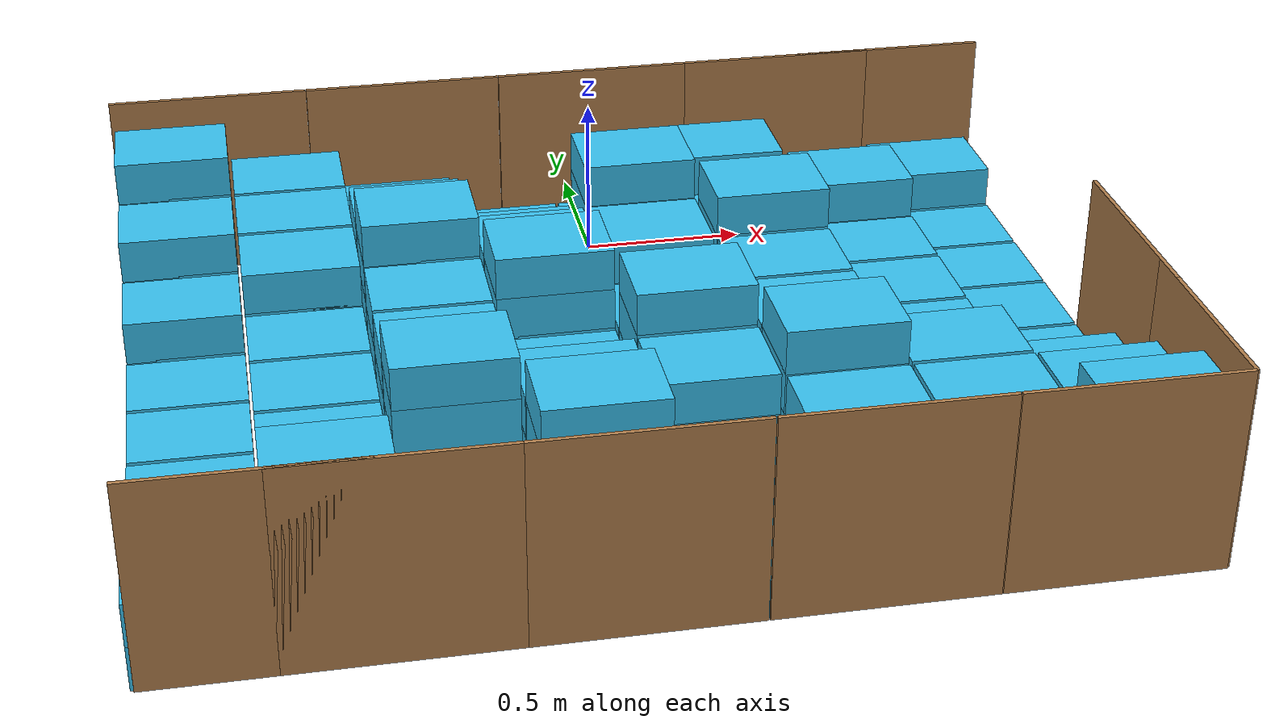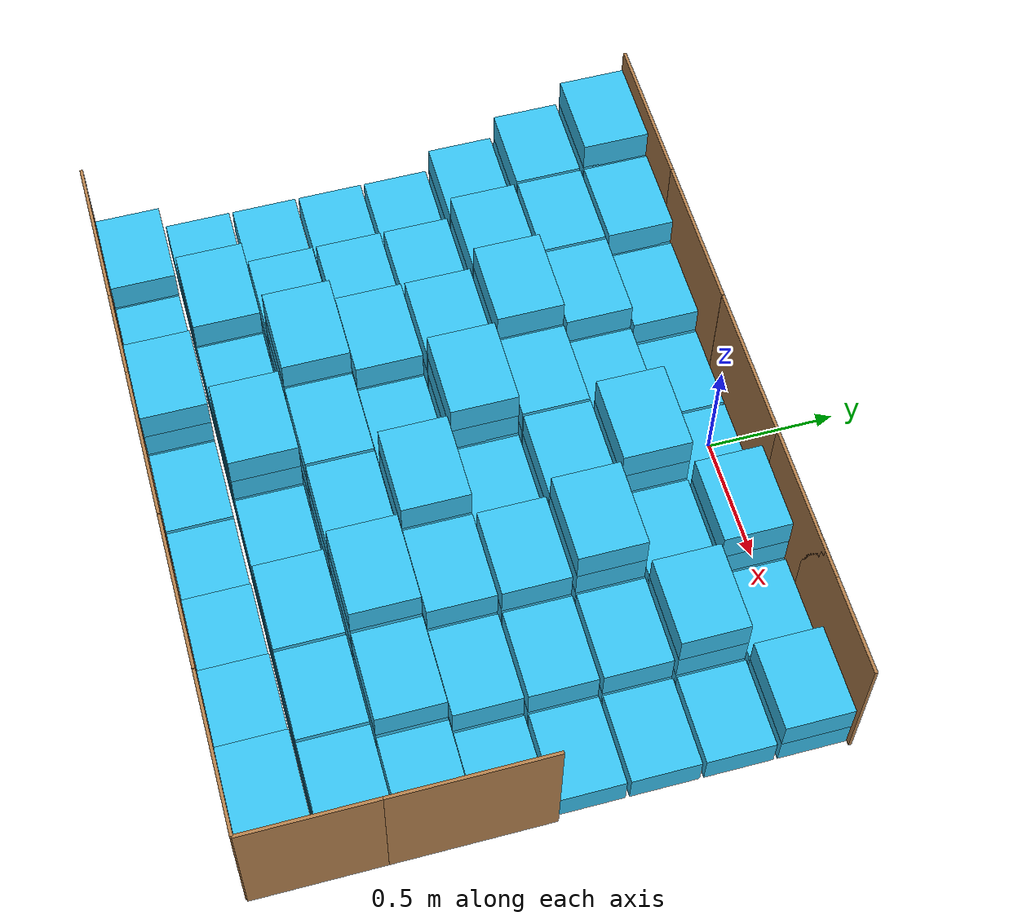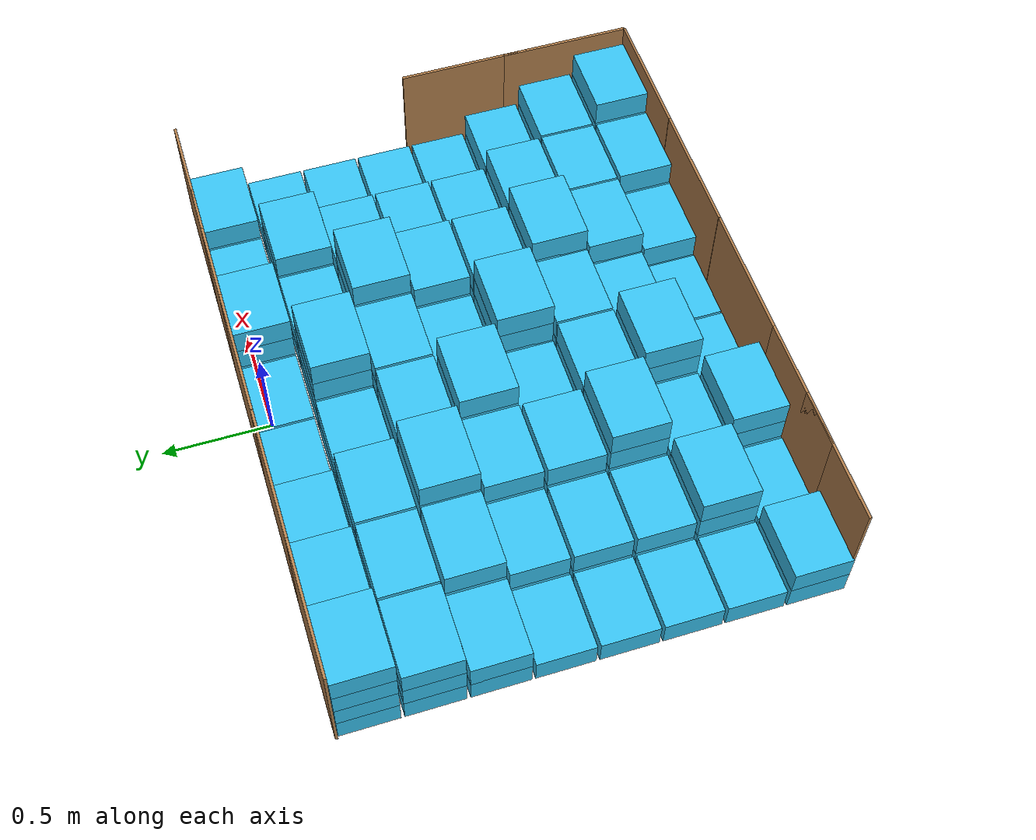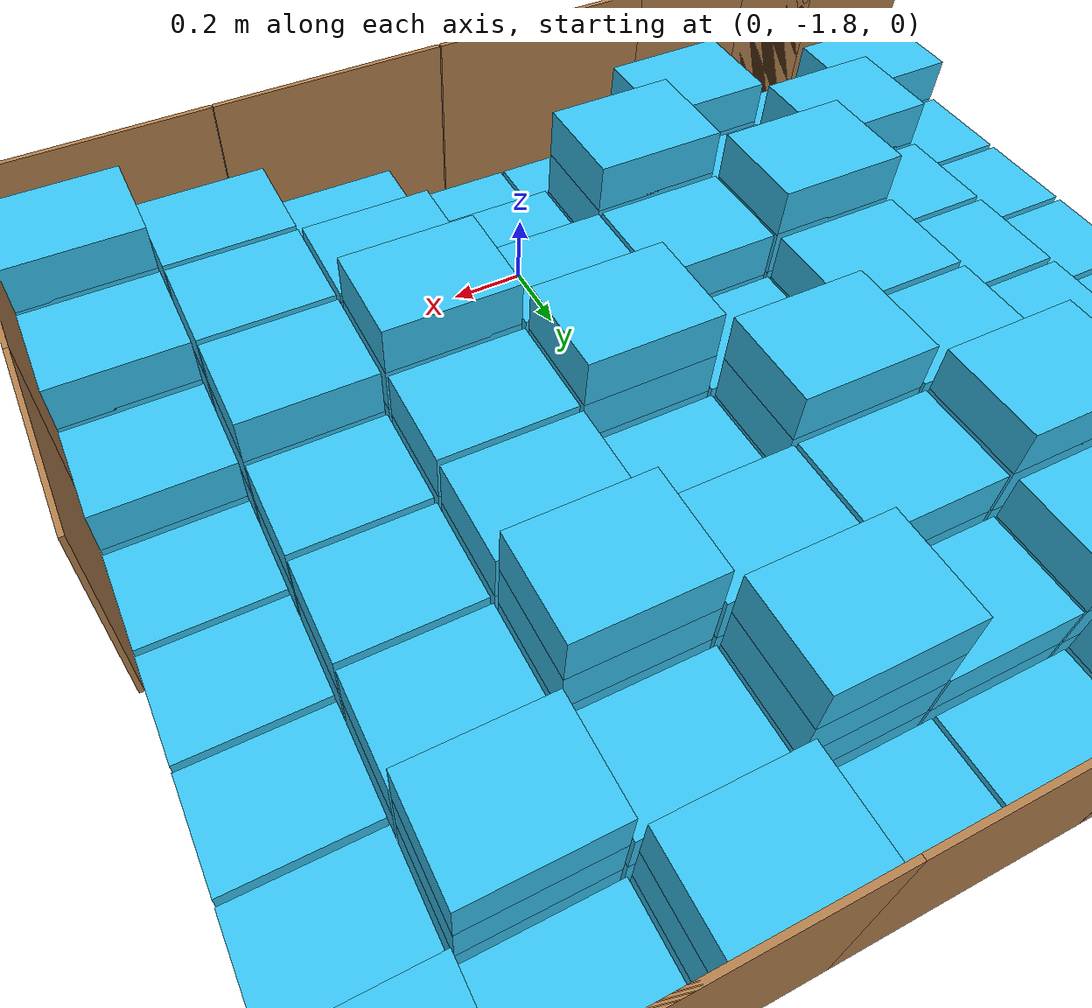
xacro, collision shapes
<?xml version="1.0" ?>
<robot xmlns:xacro="http://ros.org/wiki/xacro" name="competition_map_inner">
	<gazebo>
	<static>true</static>
	</gazebo>
	<link name="world"/>

	<xacro:include filename="$(find unitree_gazebo)/urdf/obstacles/materials.xacro" />

<!-- Terrain 5 -->
	<xacro:include filename="$(find unitree_gazebo)/urdf/obstacles/Plastic_Storage_Crate.urdf.xacro"/>

	<xacro:Plastic_Storage_Crate parent="world" handle="411" position="-0.2699953317642212 -0.32500243186950684 0.06500090658664703" orientation="3.141592653589793 2.568959825880172e-05 3.141592653589793"/>
	<xacro:Plastic_Storage_Crate parent="world" handle="421" position="0.7800014019012451 -1.9750040769577026 0.065028116106987" orientation="3.141592653589793 2.568959825880172e-05 3.141592653589793"/>
	<xacro:Plastic_Storage_Crate parent="world" handle="422" position="0.7800008058547974 -1.7000020742416382 0.06502814590930939" orientation="0.0 -2.5868415831076987e-05 0.0"/>
	<xacro:Plastic_Storage_Crate parent="world" handle="423" position="0.7800014019012451 -1.4250019788742065 0.06502790004014969" orientation="0.0 -2.5868415831076987e-05 0.0"/>
	<xacro:Plastic_Storage_Crate parent="world" handle="424" position="0.7800018787384033 -1.1500020027160645 0.06502807885408401" orientation="0.0 -2.5868415831076987e-05 0.0"/>
	<xacro:Plastic_Storage_Crate parent="world" handle="425" position="0.7800004482269287 -0.8750021457672119 0.06502798199653625" orientation="0.0 -2.5868415831076987e-05 0.0"/>
	<xacro:Plastic_Storage_Crate parent="world" handle="426" position="0.7800014019012451 -0.6000016927719116 0.06502790004014969" orientation="0.0 -2.5868415831076987e-05 0.0"/>
	<xacro:Plastic_Storage_Crate parent="world" handle="427" position="0.7800028324127197 -0.32500243186950684 0.06502801924943924" orientation="3.141592653589793 2.568959825880172e-05 3.141592653589793"/>
	<xacro:Plastic_Storage_Crate parent="world" handle="428" position="0.7800012826919556 -0.0500025749206543 0.0650281310081482" orientation="3.141592653589793 2.568959825880172e-05 3.141592653589793"/>
	<xacro:Plastic_Storage_Crate parent="world" handle="429" position="0.42999911308288574 -1.7000024318695068 0.06501908600330353" orientation="0.0 -2.5868415831076987e-05 0.0"/>
	<xacro:Plastic_Storage_Crate parent="world" handle="430" position="0.430000901222229 -1.4250019788742065 0.06501901894807816" orientation="0.0 -2.5868415831076987e-05 0.0"/>
	<xacro:Plastic_Storage_Crate parent="world" handle="431" position="0.42999911308288574 -1.150002121925354 0.06501908600330353" orientation="0.0 -2.5868415831076987e-05 0.0"/>
	<xacro:Plastic_Storage_Crate parent="world" handle="432" position="0.4299999475479126 -0.8750021457672119 0.06501903384923935" orientation="0.0 -2.5868415831076987e-05 0.0"/>
	<xacro:Plastic_Storage_Crate parent="world" handle="433" position="0.4299999475479126 -0.6000016927719116 0.06501903384923935" orientation="0.0 -2.5868415831076987e-05 0.0"/>
	<xacro:Plastic_Storage_Crate parent="world" handle="434" position="0.43000006675720215 -0.32500243186950684 0.06501896679401398" orientation="3.141592653589793 2.568959825880172e-05 3.141592653589793"/>
	<xacro:Plastic_Storage_Crate parent="world" handle="435" position="0.43000006675720215 -0.0500025749206543 0.06501896679401398" orientation="3.141592653589793 2.568959825880172e-05 3.141592653589793"/>
	<xacro:Plastic_Storage_Crate parent="world" handle="436" position="0.08000147342681885 -1.9750031232833862 0.06501009315252304" orientation="3.141592653589793 2.568959825880172e-05 3.141592653589793"/>
	<xacro:Plastic_Storage_Crate parent="world" handle="437" position="0.08000040054321289 -1.7000020742416382 0.0650099366903305" orientation="0.0 -2.5868415831076987e-05 0.0"/>
	<xacro:Plastic_Storage_Crate parent="world" handle="438" position="0.07999932765960693 -1.4250019788742065 0.06500985473394394" orientation="0.0 -2.5868415831076987e-05 0.0"/>
	<xacro:Plastic_Storage_Crate parent="world" handle="439" position="0.08000040054321289 -1.150001883506775 0.0650099366903305" orientation="0.0 -2.5868415831076987e-05 0.0"/>
	<xacro:Plastic_Storage_Crate parent="world" handle="440" position="0.08000040054321289 -0.8750021457672119 0.0650099366903305" orientation="0.0 -2.5868415831076987e-05 0.0"/>
	<xacro:Plastic_Storage_Crate parent="world" handle="441" position="0.07999932765960693 -0.6000016927719116 0.06500985473394394" orientation="0.0 -2.5868415831076987e-05 0.0"/>
	<xacro:Plastic_Storage_Crate parent="world" handle="442" position="0.08000147342681885 -0.32500243186950684 0.06501009315252304" orientation="3.141592653589793 2.568959825880172e-05 3.141592653589793"/>
	<xacro:Plastic_Storage_Crate parent="world" handle="443" position="0.08000040054321289 -0.0500025749206543 0.0650099366903305" orientation="3.141592653589793 2.568959825880172e-05 3.141592653589793"/>
	<xacro:Plastic_Storage_Crate parent="world" handle="444" position="-0.2699980139732361 -1.7000020742416382 0.06500095874071121" orientation="0.0 -2.5868415831076987e-05 0.0"/>
	<xacro:Plastic_Storage_Crate parent="world" handle="445" position="-0.2699993848800659 -1.4250019788742065 0.06500086933374405" orientation="0.0 -2.5868415831076987e-05 0.0"/>
	<xacro:Plastic_Storage_Crate parent="world" handle="446" position="-0.2699980139732361 -1.150002121925354 0.06500095874071121" orientation="0.0 -2.5868415831076987e-05 0.0"/>
	<xacro:Plastic_Storage_Crate parent="world" handle="447" position="-0.2699981927871704 -0.8750016689300537 0.065000981092453" orientation="3.141592653589793 2.568959825880172e-05 3.141592653589793"/>
	<xacro:Plastic_Storage_Crate parent="world" handle="448" position="-0.2699981927871704 -0.6000015735626221 0.065000981092453" orientation="3.141592653589793 2.568959825880172e-05 3.141592653589793"/>
	<xacro:Plastic_Storage_Crate parent="world" handle="449" position="-0.6199989914894104 -0.8750021457672119 0.06499185413122177" orientation="0.0 -2.5868415831076987e-05 0.0"/>
	<xacro:Plastic_Storage_Crate parent="world" handle="450" position="-0.6199984550476074 -0.32500243186950684 0.06499200314283371" orientation="3.141592653589793 2.568959825880172e-05 3.141592653589793"/>
	<xacro:Plastic_Storage_Crate parent="world" handle="451" position="-0.6200002431869507 -0.0500025749206543 0.06499200314283371" orientation="3.141592653589793 2.568959825880172e-05 3.141592653589793"/>
	<xacro:Plastic_Storage_Crate parent="world" handle="452" position="-0.6199996471405029 -0.6000016927719116 0.06499158591032028" orientation="0.0 -2.5868415831076987e-05 0.0"/>
	<xacro:Plastic_Storage_Crate parent="world" handle="453" position="-0.9699981212615967 -1.7000023126602173 0.0649828314781189" orientation="3.141592653589793 2.568959825880172e-05 3.141592653589793"/>
	<xacro:Plastic_Storage_Crate parent="world" handle="454" position="-0.9699994325637817 -1.4250019788742065 0.06498309969902039" orientation="0.0 -2.5868415831076987e-05 0.0"/>
	<xacro:Plastic_Storage_Crate parent="world" handle="455" position="-0.9699994325637817 -1.1500020027160645 0.06498309969902039" orientation="0.0 -2.5868415831076987e-05 0.0"/>
	<xacro:Plastic_Storage_Crate parent="world" handle="456" position="1.1299996376037598 -1.9750031232833862 0.19003722071647644" orientation="3.141592653589793 2.568959825880172e-05 3.141592653589793"/>
	<xacro:Plastic_Storage_Crate parent="world" handle="457" position="0.7799979448318481 -1.9750040769577026 0.1900283247232437" orientation="3.141592653589793 2.568959825880172e-05 3.141592653589793"/>
	<xacro:Plastic_Storage_Crate parent="world" handle="458" position="1.1300008296966553 -1.7000025510787964 0.19003668427467346" orientation="3.141592653589793 2.568959825880172e-05 3.141592653589793"/>
	<xacro:Plastic_Storage_Crate parent="world" handle="459" position="1.1300008296966553 -1.4250017404556274 0.1900370568037033" orientation="3.141592653589793 2.568959825880172e-05 3.141592653589793"/>
	<xacro:Plastic_Storage_Crate parent="world" handle="460" position="1.1299974918365479 -1.7000025510787964 0.31503668427467346" orientation="3.141592653589793 2.568959825880172e-05 3.141592653589793"/>
	<xacro:Plastic_Storage_Crate parent="world" handle="461" position="1.129995346069336 -1.9750031232833862 0.3150373697280884" orientation="3.141592653589793 2.568959825880172e-05 3.141592653589793"/>
	<xacro:Plastic_Storage_Crate parent="world" handle="462" position="0.7799948453903198 -1.9750040769577026 0.31502825021743774" orientation="3.141592653589793 2.568959825880172e-05 3.141592653589793"/>
	<xacro:Plastic_Storage_Crate parent="world" handle="463" position="-0.6200038194656372 -0.0500025749206543 0.18999190628528595" orientation="3.141592653589793 2.568959825880172e-05 3.141592653589793"/>
	<xacro:Plastic_Storage_Crate parent="world" handle="464" position="1.129992961883545 -1.9750031232833862 0.44003742933273315" orientation="3.141592653589793 2.568959825880172e-05 3.141592653589793"/>
	<xacro:Plastic_Storage_Crate parent="world" handle="465" position="1.1300036907196045 -1.7000024318695068 0.06503673642873764" orientation="3.141592653589793 2.5868415831076993e-05 3.141592653589793"/>
	<xacro:Plastic_Storage_Crate parent="world" handle="466" position="1.1300034523010254 -1.150001883506775 0.06503678113222122" orientation="3.141592653589793 2.568959825880172e-05 3.141592653589793"/>
	<xacro:Plastic_Storage_Crate parent="world" handle="467" position="1.1300034523010254 -0.6000015735626221 0.06503678113222122" orientation="3.141592653589793 2.568959825880172e-05 3.141592653589793"/>
	<xacro:Plastic_Storage_Crate parent="world" handle="468" position="-0.9699994325637817 -0.8750021457672119 0.06498309969902039" orientation="0.0 -2.5868415831076987e-05 0.0"/>
	<xacro:Plastic_Storage_Crate parent="world" handle="469" position="-0.9699994325637817 -0.6000016927719116 0.06498309969902039" orientation="0.0 -2.5868415831076987e-05 0.0"/>
	<xacro:Plastic_Storage_Crate parent="world" handle="470" position="-0.9699994325637817 -0.32500243186950684 0.06498309969902039" orientation="0.0 -2.5868415831076987e-05 0.0"/>
	<xacro:Plastic_Storage_Crate parent="world" handle="471" position="-0.9699981212615967 -0.0500025749206543 0.0649828314781189" orientation="3.141592653589793 2.568959825880172e-05 3.141592653589793"/>
	<xacro:Plastic_Storage_Crate parent="world" handle="472" position="-1.3199998140335083 -1.4250017404556274 0.06497394293546677" orientation="3.141592653589793 2.568959825880172e-05 3.141592653589793"/>
	<xacro:Plastic_Storage_Crate parent="world" handle="473" position="-1.3199998140335083 -0.8750016689300537 0.06497394293546677" orientation="3.141592653589793 2.568959825880172e-05 3.141592653589793"/>
	<xacro:Plastic_Storage_Crate parent="world" handle="474" position="-1.3199998140335083 -0.32500243186950684 0.06497394293546677" orientation="3.141592653589793 2.568959825880172e-05 3.141592653589793"/>
	<xacro:Plastic_Storage_Crate parent="world" handle="475" position="0.7799997329711914 -1.7000023126602173 0.19002807140350342" orientation="3.141592653589793 2.568959825880172e-05 3.141592653589793"/>
	<xacro:Plastic_Storage_Crate parent="world" handle="476" position="0.7800003290176392 -1.4250017404556274 0.19002804160118103" orientation="3.141592653589793 2.568959825880172e-05 3.141592653589793"/>
	<xacro:Plastic_Storage_Crate parent="world" handle="477" position="0.7800006866455078 -1.150001883506775 0.19002801179885864" orientation="3.141592653589793 2.568959825880172e-05 3.141592653589793"/>
	<xacro:Plastic_Storage_Crate parent="world" handle="478" position="0.7799993753433228 -0.8750016689300537 0.19002804160118103" orientation="3.141592653589793 2.568959825880172e-05 3.141592653589793"/>
	<xacro:Plastic_Storage_Crate parent="world" handle="479" position="0.7800003290176392 -0.6000015735626221 0.19002804160118103" orientation="3.141592653589793 2.568959825880172e-05 3.141592653589793"/>
	<xacro:Plastic_Storage_Crate parent="world" handle="480" position="0.42999887466430664 -1.7000025510787964 0.19001901149749756" orientation="3.141592653589793 2.568959825880172e-05 3.141592653589793"/>
	<xacro:Plastic_Storage_Crate parent="world" handle="481" position="0.4299999475479126 -1.4250019788742065 0.19001902639865875" orientation="0.0 -2.5868415831076987e-05 0.0"/>
	<xacro:Plastic_Storage_Crate parent="world" handle="482" position="0.4299980401992798 -1.150002121925354 0.19001907110214233" orientation="0.0 -2.5868415831076987e-05 0.0"/>
	<xacro:Plastic_Storage_Crate parent="world" handle="483" position="0.42999887466430664 -0.8750021457672119 0.19001902639865875" orientation="0.0 -2.5868415831076987e-05 0.0"/>
	<xacro:Plastic_Storage_Crate parent="world" handle="484" position="0.4299999475479126 -0.6000015735626221 0.19001896679401398" orientation="3.141592653589793 2.568959825880172e-05 3.141592653589793"/>
	<xacro:Plastic_Storage_Crate parent="world" handle="485" position="0.42999887466430664 -0.32500243186950684 0.19001901149749756" orientation="3.141592653589793 2.568959825880172e-05 3.141592653589793"/>
	<xacro:Plastic_Storage_Crate parent="world" handle="486" position="0.07999956607818604 -1.7000023126602173 0.19001001119613647" orientation="3.141592653589793 2.568959825880172e-05 3.141592653589793"/>
	<xacro:Plastic_Storage_Crate parent="world" handle="487" position="0.07999742031097412 -1.4250019788742065 0.1900099217891693" orientation="0.0 -2.5868415831076987e-05 0.0"/>
	<xacro:Plastic_Storage_Crate parent="world" handle="488" position="0.07999837398529053 -1.150001883506775 0.19001002609729767" orientation="0.0 -2.5868415831076987e-05 0.0"/>
	<xacro:Plastic_Storage_Crate parent="world" handle="489" position="0.07999837398529053 -0.8750021457672119 0.19001002609729767" orientation="3.141592653589793 -8.742277657347583e-08 3.141592653589793"/>
	<xacro:Plastic_Storage_Crate parent="world" handle="490" position="0.07999742031097412 -0.6000016927719116 0.1900099217891693" orientation="0.0 -2.5868415831076987e-05 0.0"/>
	<xacro:Plastic_Storage_Crate parent="world" handle="491" position="0.07999956607818604 -0.32500243186950684 0.19001001119613647" orientation="3.141592653589793 2.568959825880172e-05 3.141592653589793"/>
	<xacro:Plastic_Storage_Crate parent="world" handle="492" position="-0.6199964284896851 -1.9750031232833862 0.06499192118644714" orientation="3.141592653589793 2.568959825880172e-05 3.141592653589793"/>
	<xacro:Plastic_Storage_Crate parent="world" handle="493" position="-0.6199973821640015 -1.7000024318695068 0.06499174982309341" orientation="0.0 -2.5868415831076987e-05 0.0"/>
	<xacro:Plastic_Storage_Crate parent="world" handle="494" position="-0.6199989914894104 -1.4250019788742065 0.06499185413122177" orientation="0.0 -2.5868415831076987e-05 0.0"/>
	<xacro:Plastic_Storage_Crate parent="world" handle="495" position="-0.6199973821640015 -1.150002121925354 0.06499174982309341" orientation="0.0 -2.5868415831076987e-05 0.0"/>
	<xacro:Plastic_Storage_Crate parent="world" handle="496" position="-0.9700043201446533 -0.6000015735626221 0.3149827718734741" orientation="3.141592653589793 2.568959825880172e-05 3.141592653589793"/>
	<xacro:Plastic_Storage_Crate parent="world" handle="497" position="-1.320009469985962 -0.05000114440917969 0.4399738907814026" orientation="3.141592653589793 2.568959825880172e-05 3.141592653589793"/>
	<xacro:Plastic_Storage_Crate parent="world" handle="498" position="-0.2700003385543823 -1.7000023126602173 0.19000113010406494" orientation="3.141592653589793 2.568959825880172e-05 3.141592653589793"/>
	<xacro:Plastic_Storage_Crate parent="world" handle="499" position="-0.27000290155410767 -1.4250019788742065 0.19000092148780823" orientation="0.0 -2.5868415831076987e-05 0.0"/>
	<xacro:Plastic_Storage_Crate parent="world" handle="500" position="-0.2700014114379883 -1.150002121925354 0.19000087678432465" orientation="3.141592653589793 -8.742277657347583e-08 3.141592653589793"/>
	<xacro:Plastic_Storage_Crate parent="world" handle="501" position="-0.27000290155410767 -0.8750021457672119 0.19000092148780823" orientation="0.0 -2.5868415831076987e-05 0.0"/>
	<xacro:Plastic_Storage_Crate parent="world" handle="502" position="-0.27000153064727783 -0.6000015735626221 0.19000107049942017" orientation="3.141592653589793 2.568959825880172e-05 3.141592653589793"/>
	<xacro:Plastic_Storage_Crate parent="world" handle="503" position="-0.26999831199645996 -0.32500243186950684 0.1900010108947754" orientation="3.141592653589793 2.568959825880172e-05 3.141592653589793"/>
	<xacro:Plastic_Storage_Crate parent="world" handle="504" position="-0.6199997663497925 -1.7000025510787964 0.18999198079109192" orientation="3.141592653589793 2.568959825880172e-05 3.141592653589793"/>
	<xacro:Plastic_Storage_Crate parent="world" handle="505" position="-0.6200007200241089 -1.4250017404556274 0.1899920403957367" orientation="3.141592653589793 2.568959825880172e-05 3.141592653589793"/>
	<xacro:Plastic_Storage_Crate parent="world" handle="506" position="-0.6200006008148193 -1.150002121925354 0.1899920403957367" orientation="0.0 -2.5868415831076987e-05 0.0"/>
	<xacro:Plastic_Storage_Crate parent="world" handle="507" position="-0.620002269744873 -0.8750021457672119 0.18999169766902924" orientation="0.0 -2.5868415831076987e-05 0.0"/>
	<xacro:Plastic_Storage_Crate parent="world" handle="508" position="-0.6200017929077148 -0.32500243186950684 0.18999208509922028" orientation="3.141592653589793 2.568959825880172e-05 3.141592653589793"/>
	<xacro:Plastic_Storage_Crate parent="world" handle="509" position="-0.6200031042098999 -0.6000016927719116 0.18999195098876953" orientation="0.0 -2.5868415831076987e-05 0.0"/>
	<xacro:Plastic_Storage_Crate parent="world" handle="510" position="-0.9700014591217041 -1.4250017404556274 0.1899828165769577" orientation="3.141592653589793 2.568959825880172e-05 3.141592653589793"/>
	<xacro:Plastic_Storage_Crate parent="world" handle="511" position="-0.9700014591217041 -1.150001883506775 0.1899828165769577" orientation="3.141592653589793 2.568959825880172e-05 3.141592653589793"/>
	<xacro:Plastic_Storage_Crate parent="world" handle="512" position="-0.9700014591217041 -0.8750016689300537 0.1899828165769577" orientation="3.141592653589793 2.568959825880172e-05 3.141592653589793"/>
	<xacro:Plastic_Storage_Crate parent="world" handle="513" position="-0.9700014591217041 -0.6000015735626221 0.1899828165769577" orientation="3.141592653589793 2.568959825880172e-05 3.141592653589793"/>
	<xacro:Plastic_Storage_Crate parent="world" handle="514" position="-0.9700014591217041 -0.32500243186950684 0.1899828165769577" orientation="3.141592653589793 2.568959825880172e-05 3.141592653589793"/>
	<xacro:Plastic_Storage_Crate parent="world" handle="515" position="0.4299978017807007 -1.4250017404556274 0.3150192201137543" orientation="3.141592653589793 2.568959825880172e-05 3.141592653589793"/>
	<xacro:Plastic_Storage_Crate parent="world" handle="516" position="0.42999565601348877 -1.150001883506775 0.3150192201137543" orientation="3.141592653589793 2.568959825880172e-05 3.141592653589793"/>
	<xacro:Plastic_Storage_Crate parent="world" handle="517" position="0.4299968481063843 -0.8750016689300537 0.31501924991607666" orientation="3.141592653589793 2.568959825880172e-05 3.141592653589793"/>
	<xacro:Plastic_Storage_Crate parent="world" handle="518" position="0.07999527454376221 -1.4250017404556274 0.3150100111961365" orientation="3.141592653589793 2.568959825880172e-05 3.141592653589793"/>
	<xacro:Plastic_Storage_Crate parent="world" handle="519" position="0.07999515533447266 -1.150001883506775 0.3150100111961365" orientation="0.0 -2.5868415831076987e-05 0.0"/>
	<xacro:Plastic_Storage_Crate parent="world" handle="520" position="-0.2700080871582031 -0.8750016689300537 0.4400011897087097" orientation="3.141592653589793 2.568959825880172e-05 3.141592653589793"/>
	<xacro:Plastic_Storage_Crate parent="world" handle="521" position="0.4300016164779663 -1.9750040769577026 0.0650191605091095" orientation="3.141592653589793 2.568959825880172e-05 3.141592653589793"/>
	<xacro:Plastic_Storage_Crate parent="world" handle="522" position="-0.26999926567077637 -1.9750031232833862 0.06500095129013062" orientation="3.141592653589793 2.568959825880172e-05 3.141592653589793"/>
	<xacro:Plastic_Storage_Crate parent="world" handle="523" position="-0.9699981212615967 -1.9750031232833862 0.0649828314781189" orientation="3.141592653589793 2.568959825880172e-05 3.141592653589793"/>
	<xacro:Plastic_Storage_Crate parent="world" handle="524" position="-1.3199998140335083 -1.1500011682510376 0.06497394293546677" orientation="3.141592653589793 2.568959825880172e-05 3.141592653589793"/>
	<xacro:Plastic_Storage_Crate parent="world" handle="525" position="-1.3199998140335083 -0.6000006198883057 0.06497394293546677" orientation="3.141592653589793 2.568959825880172e-05 3.141592653589793"/>
	<xacro:Plastic_Storage_Crate parent="world" handle="526" position="-1.3199998140335083 -0.05000114440917969 0.06497394293546677" orientation="3.141592653589793 2.568959825880172e-05 3.141592653589793"/>
	<xacro:Plastic_Storage_Crate parent="world" handle="527" position="1.1300034523010254 -0.32500243186950684 0.06503660976886749" orientation="3.141592653589793 2.568959825880172e-05 3.141592653589793"/>
	<xacro:Plastic_Storage_Crate parent="world" handle="528" position="1.1300034523010254 -0.875002384185791 0.06503660976886749" orientation="3.141592653589793 2.568959825880172e-05 3.141592653589793"/>
	<xacro:Plastic_Storage_Crate parent="world" handle="529" position="0.7799965143203735 -1.7000023126602173 0.31502825021743774" orientation="3.141592653589793 2.568959825880172e-05 3.141592653589793"/>
	<xacro:Plastic_Storage_Crate parent="world" handle="530" position="0.4299945831298828 -1.4250017404556274 0.44001924991607666" orientation="3.141592653589793 2.568959825880172e-05 3.141592653589793"/>
	<xacro:Plastic_Storage_Crate parent="world" handle="531" position="-0.620008111000061 -0.6000015735626221 0.43999215960502625" orientation="3.141592653589793 2.568959825880172e-05 3.141592653589793"/>
	<xacro:Plastic_Storage_Crate parent="world" handle="532" position="-0.9700043201446533 -0.32500243186950684 0.3149827718734741" orientation="3.141592653589793 2.568959825880172e-05 3.141592653589793"/>
	<xacro:Plastic_Storage_Crate parent="world" handle="533" position="-1.3200030326843262 -0.05000114440917969 0.18997392058372498" orientation="3.141592653589793 2.568959825880172e-05 3.141592653589793"/>
	<xacro:Plastic_Storage_Crate parent="world" handle="534" position="-1.3200030326843262 -0.32500243186950684 0.18997392058372498" orientation="3.141592653589793 2.568959825880172e-05 3.141592653589793"/>
	<xacro:Plastic_Storage_Crate parent="world" handle="535" position="-0.9700014591217041 -0.0500025749206543 0.1899828165769577" orientation="3.141592653589793 2.568959825880172e-05 3.141592653589793"/>
	<xacro:Plastic_Storage_Crate parent="world" handle="536" position="0.7799968719482422 -1.4250017404556274 0.31502822041511536" orientation="3.141592653589793 2.568959825880172e-05 3.141592653589793"/>
	<xacro:Plastic_Storage_Crate parent="world" handle="537" position="0.42999565601348877 -1.7000025510787964 0.3150192201137543" orientation="3.141592653589793 2.568959825880172e-05 3.141592653589793"/>
	<xacro:Plastic_Storage_Crate parent="world" handle="538" position="0.42999792098999023 -1.9750040769577026 0.19001907110214233" orientation="3.141592653589793 2.568959825880172e-05 3.141592653589793"/>
	<xacro:Plastic_Storage_Crate parent="world" handle="539" position="-0.6200047731399536 -0.32500243186950684 0.3149920403957367" orientation="3.141592653589793 2.568959825880172e-05 3.141592653589793"/>
	<xacro:Plastic_Storage_Crate parent="world" handle="540" position="-0.9700043201446533 -0.0500025749206543 0.3149827718734741" orientation="3.141592653589793 2.568959825880172e-05 3.141592653589793"/>
	<xacro:Plastic_Storage_Crate parent="world" handle="541" position="-1.320006251335144 -0.05000114440917969 0.31497395038604736" orientation="3.141592653589793 2.568959825880172e-05 3.141592653589793"/>
	<xacro:Plastic_Storage_Crate parent="world" handle="542" position="-1.320006251335144 -0.32500243186950684 0.31497395038604736" orientation="3.141592653589793 2.568959825880172e-05 3.141592653589793"/>
	<xacro:Plastic_Storage_Crate parent="world" handle="543" position="-1.3200029134750366 -0.6000006198883057 0.18997405469417572" orientation="3.141592653589793 2.568959825880172e-05 3.141592653589793"/>
	<xacro:Plastic_Storage_Crate parent="world" handle="544" position="1.1300017833709717 -1.9750019311904907 0.06503701210021973" orientation="3.141592653589793 2.568959825880172e-05 3.141592653589793"/>
	<xacro:Plastic_Storage_Crate parent="world" handle="545" position="1.1300041675567627 -1.4250017404556274 0.06503694504499435" orientation="3.141592653589793 2.568959825880172e-05 3.141592653589793"/>
	<xacro:Plastic_Storage_Crate parent="world" handle="546" position="0.07999527454376221 -0.6000015735626221 0.3150100111961365" orientation="3.141592653589793 2.568959825880172e-05 3.141592653589793"/>
	<xacro:Plastic_Storage_Crate parent="world" handle="547" position="-0.27000486850738525 -1.4250017404556274 0.31500113010406494" orientation="3.141592653589793 2.568959825880172e-05 3.141592653589793"/>
	<xacro:Plastic_Storage_Crate parent="world" handle="548" position="-0.27000588178634644 -0.8750021457672119 0.31500115990638733" orientation="0.0 -2.5868415831076987e-05 0.0"/>
	<xacro:Plastic_Storage_Crate parent="world" handle="549" position="-0.27000486850738525 -0.6000015735626221 0.31500113010406494" orientation="3.141592653589793 2.568959825880172e-05 3.141592653589793"/>
	<xacro:Plastic_Storage_Crate parent="world" handle="550" position="-0.6200028657913208 -1.150001883506775 0.31499189138412476" orientation="3.141592653589793 2.568959825880172e-05 3.141592653589793"/>
	<xacro:Plastic_Storage_Crate parent="world" handle="551" position="-0.6200039386749268 -0.8750016689300537 0.31499210000038147" orientation="3.141592653589793 2.568959825880172e-05 3.141592653589793"/>
	<xacro:Plastic_Storage_Crate parent="world" handle="552" position="-0.6200047731399536 -0.6000015735626221 0.3149920403957367" orientation="3.141592653589793 2.568959825880172e-05 3.141592653589793"/>
	<xacro:Plastic_Storage_Crate parent="world" handle="553" position="0.07999289035797119 -1.1500016450881958 0.440010130405426" orientation="3.141592653589793 2.568959825880172e-05 3.141592653589793"/>
	<xacro:Plastic_Storage_Crate parent="world" handle="554" position="-0.2700004577636719 -1.700002908706665 0.44000110030174255" orientation="3.1415926535894076 2.586841583107698e-05 3.1415926237874725"/>
	<xacro:Plastic_Storage_Crate parent="world" handle="555" position="-1.3199974298477173 -1.975003957748413 0.18998295068740845" orientation="3.1415926237874707 2.5689598258801718e-05 3.1415926535894103"/>
	<xacro:Plastic_Storage_Crate parent="world" handle="556" position="1.1300039291381836 -0.0500030517578125 0.06503670662641525" orientation="3.1415926237874707 2.5689598258801718e-05 3.1415926535894103"/>
	<xacro:Plastic_Storage_Crate parent="world" handle="557" position="-1.3199974298477173 -1.975003957748413 0.06498291343450546" orientation="3.1415926237874707 2.5689598258801718e-05 3.1415926535894103"/>
	<xacro:Plastic_Storage_Crate parent="world" handle="558" position="-0.6199958324432373 -1.9750034809112549 0.31499183177948" orientation="3.1415926237874707 2.5689598258801718e-05 3.1415926535894103"/>
	<xacro:Plastic_Storage_Crate parent="world" handle="559" position="-0.9699980020523071 -1.7000030279159546 0.3149827718734741" orientation="3.1415926237874707 2.5689598258801718e-05 3.1415926535894103"/>
	<xacro:Plastic_Storage_Crate parent="world" handle="560" position="-1.31999933719635 -1.7000017166137695 0.06497389823198318" orientation="3.1415926237874707 2.5689598258801718e-05 3.1415926535894103"/>
	<xacro:Plastic_Storage_Crate parent="world" handle="561" position="-0.6199959516525269 -1.9750033617019653 0.1899917870759964" orientation="3.1415926237874707 2.5689598258801718e-05 3.1415926535894103"/>
	<xacro:Plastic_Storage_Crate parent="world" handle="562" position="-0.9699978828430176 -1.700002908706665 0.18998274207115173" orientation="3.1415926237874707 2.5689598258801718e-05 3.1415926535894103"/>
	<xacro:Plastic_Storage_Crate parent="world" handle="563" position="0.430000901222229 -0.0500030517578125 0.31501907110214233" orientation="3.1415926237874707 2.5689598258801718e-05 3.1415926535894103"/>
	<xacro:Plastic_Storage_Crate parent="world" handle="564" position="0.7800034284591675 -0.32500290870666504 0.3150283098220825" orientation="3.1415926237874707 2.5689598258801718e-05 3.1415926535894103"/>
	<xacro:Plastic_Storage_Crate parent="world" handle="565" position="0.43000030517578125 -0.0500025749206543 0.19001902639865875" orientation="3.1415926237874707 2.5689598258801718e-05 3.1415926535894103"/>
	<xacro:Plastic_Storage_Crate parent="world" handle="566" position="0.7800033092498779 -0.32500290870666504 0.1900278925895691" orientation="3.1415926237874707 2.5689598258801718e-05 3.1415926535894103"/>
	<xacro:Plastic_Storage_Crate parent="world" handle="567" position="1.1300039291381836 -0.0500025749206543 0.19003655016422272" orientation="3.1415926237874707 2.5689598258801718e-05 3.1415926535894103"/>
	<xacro:Plastic_Storage_Crate parent="world" handle="568" position="0.07999956607818604 -0.32500290870666504 0.4400097727775574" orientation="3.1415926535894076 2.586841583107698e-05 3.1415926237874725"/>
	<xacro:Plastic_Storage_Crate parent="world" handle="569" position="-0.2700003385543823 -1.700002908706665 0.3150010406970978" orientation="3.1415926535894076 2.586841583107698e-05 3.1415926237874725"/>
	<xacro:Plastic_Storage_Crate parent="world" handle="570" position="0.07999956607818604 -0.32500290870666504 0.31500980257987976" orientation="3.1415926535894076 2.586841583107698e-05 3.1415926237874725"/>
	<xacro:Plastic_Storage_Crate parent="world" handle="571" position="-0.6200006008148193 -1.4250025749206543 0.4399920403957367" orientation="3.1415926535894076 2.586841583107698e-05 3.1415926237874725"/>
	<xacro:Plastic_Storage_Crate parent="world" handle="572" position="0.42999982833862305 -0.6000018119812012 0.44001877307891846" orientation="3.1415926535894076 2.586841583107698e-05 3.1415926237874725"/>
	<xacro:Plastic_Storage_Crate parent="world" handle="573" position="-0.6200008392333984 -1.4250025749206543 0.31499186158180237" orientation="3.1415926535894076 2.586841583107698e-05 3.1415926237874725"/>
	<xacro:Plastic_Storage_Crate parent="world" handle="574" position="0.43000006675720215 -0.6000022888183594 0.31501901149749756" orientation="3.1415926535894076 2.586841583107698e-05 3.1415926237874725"/>
	<xacro:Plastic_Storage_Crate parent="world" handle="575" position="-0.26999950408935547 -0.0500032901763916 0.06500989198684692" orientation="3.1415926535894076 2.586841583107698e-05 3.1415926237874725"/>

	<xacro:include filename="$(find unitree_gazebo)/urdf/obstacles/Plywood_wall.urdf.xacro"/>
	<xacro:Plywood_wall parent="world" handle="412" position="-1.1950156688690186 0.08799886703491211 0.29749956727027893" orientation="-5.960464655174745e-08 -5.960464299903366e-08 5.960464655174745e-08"/>
	<xacro:Plywood_wall parent="world" handle="413" position="-0.5840157866477966 0.08799958229064941 0.29749956727027893" orientation="-5.960464655174745e-08 -5.960464299903366e-08 5.960464655174745e-08"/>
	<xacro:Plywood_wall parent="world" handle="414" position="0.0279843807220459 0.08799886703491211 0.29749950766563416" orientation="-5.960464655174745e-08 -5.960464299903366e-08 5.960464655174745e-08"/>
	<xacro:Plywood_wall parent="world" handle="415" position="0.6379845142364502 0.08799910545349121 0.2974993586540222" orientation="-5.960464655174745e-08 -5.960464299903366e-08 5.960464655174745e-08"/>
	<xacro:Plywood_wall parent="world" handle="416" position="1.0109846591949463 -2.106001138687134 0.29749929904937744" orientation="-5.960464655174745e-08 -5.960464299903366e-08 5.960464655174745e-08"/>
	<xacro:Plywood_wall parent="world" handle="417" position="0.39798450469970703 -2.1060006618499756 0.2974995970726013" orientation="-5.960464655174745e-08 -5.960464299903366e-08 5.960464655174745e-08"/>
	<xacro:Plywood_wall parent="world" handle="418" position="-0.21601563692092896 -2.106001377105713 0.29749974608421326" orientation="-5.960464655174745e-08 -5.960464299903366e-08 5.960464655174745e-08"/>
	<xacro:Plywood_wall parent="world" handle="419" position="-0.8260154128074646 -2.106001138687134 0.29749950766563416" orientation="-5.960464655174745e-08 -5.960464299903366e-08 5.960464655174745e-08"/>
	<xacro:Plywood_wall parent="world" handle="420" position="1.3169996738433838 -1.302013635635376 0.2974989414215088" orientation="-5.960618220995225e-08 -5.960464475556236e-08 1.5708221206666269"/>
	<xacro:Plywood_wall parent="world" handle="576" position="1.3169996738433838 -1.802013635635376 0.2974989414215088" orientation="-5.960618220995225e-08 -5.960464475556236e-08 1.5708221206666269"/>
	<xacro:Plywood_wall parent="world" handle="577" position="1.012984275817871 0.08799910545349121 0.2974993586540222" orientation="-5.960464655174745e-08 -5.960464299903366e-08 5.960464655174745e-08"/>
	<xacro:Plywood_wall parent="world" handle="578" position="-1.1760151386260986 -2.106001138687134 0.29749950766563416" orientation="-5.960464655174745e-08 -5.960464299903366e-08 5.960464655174745e-08"/>

</robot>

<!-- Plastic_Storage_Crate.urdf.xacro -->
<robot xmlns:xacro="http://www.ros.org/wiki/xacro">
  <xacro:macro name="Plastic_Storage_Crate" params="handle parent position orientation">

  <joint name="Plastic_Storage_Crate_${handle}_joint" type="fixed">
    <origin xyz="${position}" rpy="${orientation}"/>
    <parent link="${parent}"/>
    <child link="Plastic_Storage_Crate_${handle}"/>
  </joint>

    <link
      name="Plastic_Storage_Crate_${handle}">

      <inertial>
        <origin xyz="0 0 0" rpy="0 0 0"/>
        <mass value="1"/>
        <inertia
      ixx="+1.000e-03" ixy="+7.433e-15" ixz="+0.000e+00"
      iyy="+1.000e-03" iyz="-7.105e-15"
      izz="+1.000e-03"/>
      </inertial>

      <visual>
        <origin
          xyz="0 0 0"
          rpy="0 0 0" />
        <geometry>
          <mesh
            filename="package://unitree_gazebo/meshes/Plastic_Storage_Crate.stl"/>
        </geometry>
        <material
          name="">
          <color
            rgba="0.22 0.76 0.94 1" />
        </material>
      </visual>
      <collision>
        <origin
          xyz="0 0 0"
          rpy="0 0 0" />
        <geometry>
          <box size="3.4000e-01 2.6000e-01 1.3000e-01" />
        </geometry>
        <material
          name="">
          <color
            rgba="1 0 0 1" />
        </material>
      </collision>
    </link>

    <gazebo reference="Plastic_Storage_Crate_${handle}">
      <material>Gazebo/BlueGlow</material>
      <static>true</static>
    </gazebo>

  </xacro:macro>
</robot>

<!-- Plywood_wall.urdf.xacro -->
<robot xmlns:xacro="http://www.ros.org/wiki/xacro">
  <xacro:macro name="Plywood_wall" params="handle parent position orientation">

  <joint name="Plywood_wall_${handle}_joint" type="fixed">
    <origin xyz="${position}" rpy="${orientation}"/>
    <parent link="${parent}"/>
    <child link="Plywood_wall_${handle}"/>
  </joint>

    <link
      name="Plywood_wall_${handle}">

      <inertial>
        <origin xyz="0 0 0" rpy="0 0 0"/>
        <mass value="1"/>
        <inertia
      ixx="+2.951e-02" ixy="-1.848e-09" ixz="-8.978e-11"
      iyy="+6.051e-02" iyz="-1.758e-09"
      izz="+3.102e-02"/>
      </inertial>

      <visual>
        <origin
          xyz="0 0 0"
          rpy="0 0 0" />
        <geometry>
          <mesh
            filename="package://unitree_gazebo/meshes/Plywood_wall.stl"/>
        </geometry>
        <material
          name="wood">
        </material>
      </visual>
      <collision>
        <origin
          xyz="0 0 0"
          rpy="0 0 0" />
        <geometry>
          <box size="6.1000e-01 1.2000e-02 5.9500e-01" />
        </geometry>
      </collision>
    </link>

    <gazebo reference="Plywood_wall_${handle}">
      <material>Gazebo/Wood</material>
      <static>true</static>
    </gazebo>

  </xacro:macro>
</robot>
